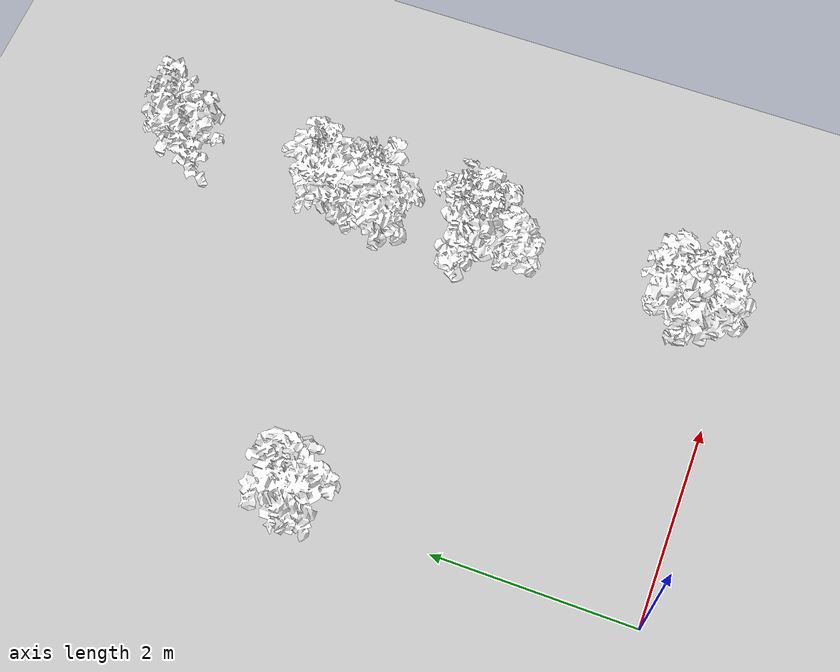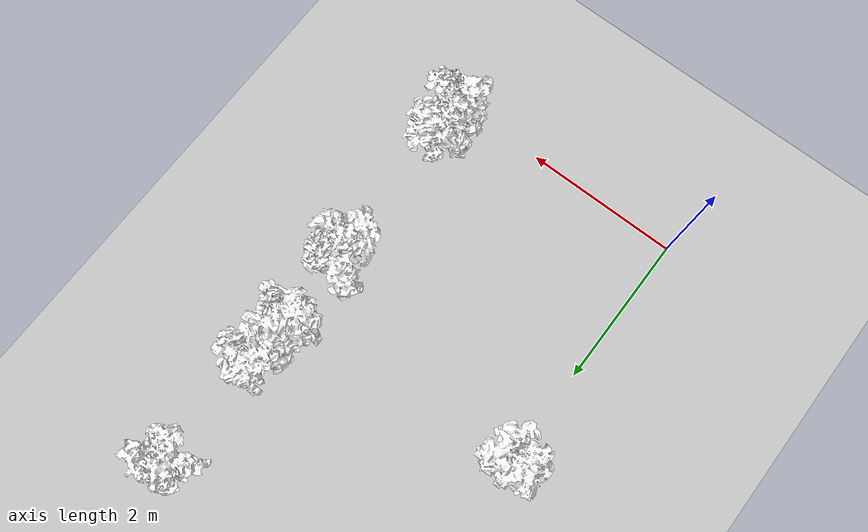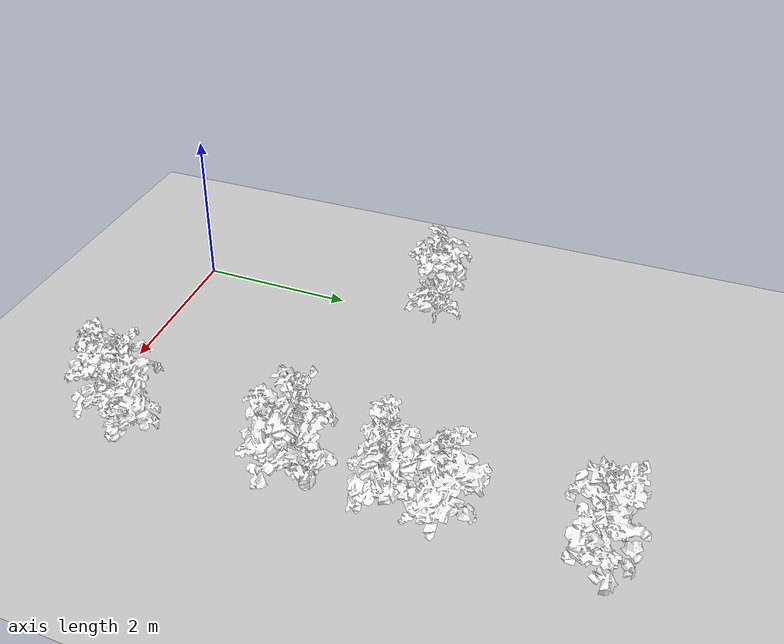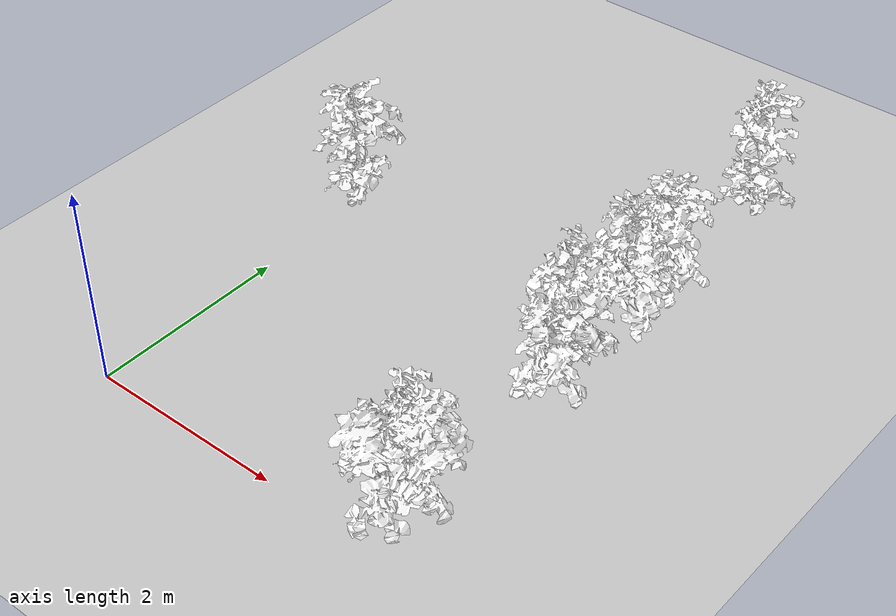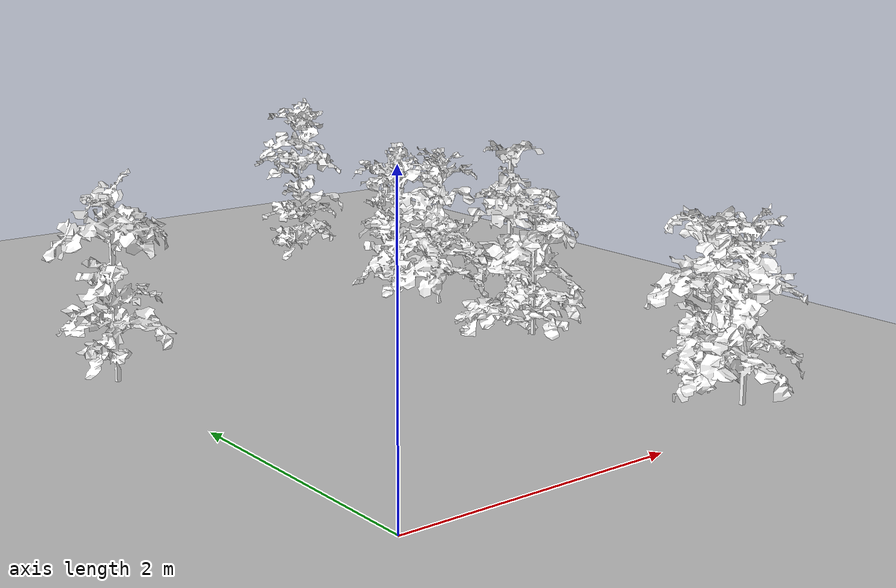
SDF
<sdf version="1.7">
 <world name="field">
  <physics name="1ms" type="ignored">
   <max_step_size>0.001</max_step_size>
   <real_time_factor>1</real_time_factor>
   <real_time_update_rate>1000</real_time_update_rate>
  </physics>
  <plugin name="ignition::gazebo::systems::Physics" filename="ignition-gazebo-physics-system"/>
  <plugin name="ignition::gazebo::systems::UserCommands" filename="ignition-gazebo-user-commands-system"/>
  <plugin name="ignition::gazebo::systems::SceneBroadcaster" filename="ignition-gazebo-scene-broadcaster-system"/>
  <plugin filename="ignition-gazebo-sensors-system" name="ignition::gazebo::systems::Sensors">
   <render_engine>ogre2</render_engine>
  </plugin>
  <scene><ambient>1 1 1 1</ambient><background>0.8 0.8 0.8 1</background><shadows>1</shadows></scene>
  <light name="sun" type="directional">
   <pose>0 0 10 0 -0 0</pose>
   <diffuse>0.8 0.8 0.8 1</diffuse>
   <specular>0.8 0.8 0.8 1</specular>
   <attenuation>
    <range>1000</range>
    <constant>0.9</constant>
    <linear>0.01</linear>
    <quadratic>0.001</quadratic>
   </attenuation>
   <direction>-0.5 0.1 -0.9</direction>
   <spot><inner_angle>0</inner_angle><outer_angle>0</outer_angle><falloff>0</falloff></spot>
  </light>
  <gravity>0 0 -9.8</gravity>
  <magnetic_field>6e-06 2.3e-05 -4.2e-05</magnetic_field>
  <atmosphere type="adiabatic"/>
  <include><uri>ground</uri><name>ground</name><pose>5.0 5.0 0 0 0 0</pose></include>
  <include><uri>tomato_11</uri><name>tomato_11</name><pose>0.0 3.3 0 0 0 0</pose></include>
  <include><uri>tomato_100</uri><name>tomato_100</name><pose>3.0999999999999996 0.3 0 0 0 0</pose></include>
  <include><uri>tomato_101</uri><name>tomato_101</name><pose>3.0999999999999996 0.6 0 0 0 0</pose></include>
  <include><uri>tomato_107</uri><name>tomato_107</name><pose>3.0999999999999996 2.4 0 0 0 0</pose></include>
  <include>
   <uri>tomato_108</uri>
   <name>tomato_108</name>
   <pose>3.0999999999999996 2.6999999999999997 0 0 0 0</pose>
  </include>
  <include>
   <uri>tomato_111</uri>
   <name>tomato_111</name>
   <pose>3.0999999999999996 3.5999999999999996 0 0 0 0</pose>
  </include>
  <include><uri>tomato_113</uri><name>tomato_113</name><pose>3.0999999999999996 4.2 0 0 0 0</pose></include>
  <include><uri>tomato_118</uri><name>tomato_118</name><pose>3.0999999999999996 5.7 0 0 0 0</pose></include>
 </world>
</sdf>

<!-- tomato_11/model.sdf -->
<sdf version="1.6">
  <model name="tomato_11">
    <static>true</static>
    <link name="link">
      <collision name="collision">
        <geometry>
          <box>
            <size>.1 .1 1</size>
          </box>
        </geometry>
      </collision>
      <visual name="branch">
        <geometry>
          <mesh>
            <uri>file://tomato_11/meshes/tomato.dae</uri>
            <submesh>
              <name>Branch1</name>
            </submesh>
          </mesh>
        </geometry>
        <material>
          <diffuse>1.0 1.0 1.0</diffuse>
          <pbr>
            <metal>
              <albedo_map>file://tomato_11/materials/textures/AG15brn1.png</albedo_map>
            </metal>
          </pbr>
        </material>
          <plugin filename="ignition-gazebo-label-system" name="ignition::gazebo::systems::Label">
            <label>2</label>
          </plugin>
      </visual>
      <visual name="leaf1">
        <geometry>
          <mesh>
            <uri>file://tomato_11/meshes/tomato.dae</uri>
            <submesh>
              <name>Leaf1</name>
            </submesh>
          </mesh>
        </geometry>
        <material>
          <diffuse>1.0 1.0 1.0</diffuse>
          <pbr>
            <metal>
              <albedo_map>file://tomato_11/materials/textures/AG15lef1.png</albedo_map>
            </metal>
          </pbr>
        </material>
          <plugin filename="ignition-gazebo-label-system" name="ignition::gazebo::systems::Label">
            <label>3</label>
          </plugin>
      </visual>
      <visual name="leaf2">
        <geometry>
          <mesh>
            <uri>file://tomato_11/meshes/tomato.dae</uri>
            <submesh>
              <name>Leaf2</name>
            </submesh>
          </mesh>
        </geometry>
        <material>
          <diffuse>1.0 1.0 1.0</diffuse>
          <pbr>
            <metal>
              <albedo_map>file://tomato_11/materials/textures/AG15lef2.png</albedo_map>
            </metal>
          </pbr>
        </material>
          <plugin filename="ignition-gazebo-label-system" name="ignition::gazebo::systems::Label">
            <label>3</label>
          </plugin>
      </visual>
      <visual name="fruit1">
        <geometry>
          <mesh>
            <uri>file://tomato_11/meshes/tomato.dae</uri>
            <submesh>
              <name>Fruit1</name>
            </submesh>
          </mesh>
        </geometry>
        <material>
          <diffuse>1.0 1.0 1.0</diffuse>
          <pbr>
            <metal>
              <albedo_map>file://tomato_11/materials/textures/AG15frt1.png</albedo_map>
            </metal>
          </pbr>
        </material>
          <plugin filename="ignition-gazebo-label-system" name="ignition::gazebo::systems::Label">
            <label>4</label>
          </plugin>
      </visual>
      <visual name="fruit2">
        <geometry>
          <mesh>
            <uri>file://tomato_11/meshes/tomato.dae</uri>
            <submesh>
              <name>Fruit2</name>
            </submesh>
          </mesh>
        </geometry>
        <material>
          <diffuse>1.0 1.0 1.0</diffuse>
          <pbr>
            <metal>
              <albedo_map>file://tomato_11/materials/textures/AG15frt2.png</albedo_map>
            </metal>
          </pbr>
        </material>
          <plugin filename="ignition-gazebo-label-system" name="ignition::gazebo::systems::Label">
            <label>4</label>
          </plugin>
      </visual>
      <visual name="fruit3">
        <geometry>
          <mesh>
            <uri>file://tomato_11/meshes/tomato.dae</uri>
            <submesh>
              <name>Fruit3</name>
            </submesh>
          </mesh>
        </geometry>
        <material>
          <diffuse>1.0 1.0 1.0</diffuse>
          <pbr>
            <metal>
              <albedo_map>file://tomato_11/materials/textures/AG15frt3.png</albedo_map>
            </metal>
          </pbr>
        </material>
      </visual>
          <plugin filename="ignition-gazebo-label-system" name="ignition::gazebo::systems::Label">
            <label>4</label>
          </plugin>
      <visual name="fruit4">
        <geometry>
          <mesh>
            <uri>file://tomato_11/meshes/tomato.dae</uri>
            <submesh>
              <name>Fruit4</name>
            </submesh>
          </mesh>
        </geometry>
        <material>
          <diffuse>1.0 1.0 1.0</diffuse>
          <pbr>
            <metal>
              <albedo_map>file://tomato_11/materials/textures/AG15frt4.png</albedo_map>
            </metal>
          </pbr>
        </material>
          <plugin filename="ignition-gazebo-label-system" name="ignition::gazebo::systems::Label">
            <label>4</label>
          </plugin>
      </visual>
      <visual name="blossom1">
        <geometry>
          <mesh>
            <uri>file://tomato_11/meshes/tomato.dae</uri>
            <submesh>
              <name>Blossom1</name>
            </submesh>
          </mesh>
        </geometry>
        <material>
          <diffuse>1.0 1.0 1.0</diffuse>
          <pbr>
            <metal>
              <albedo_map>file://tomato_11/materials/textures/AG15blo1.png</albedo_map>
            </metal>
          </pbr>
        </material>
          <plugin filename="ignition-gazebo-label-system" name="ignition::gazebo::systems::Label">
            <label>5</label>
          </plugin>
      </visual>
      <visual name="blossom2">
        <geometry>
          <mesh>
            <uri>file://tomato_11/meshes/tomato.dae</uri>
            <submesh>
              <name>Blossom2</name>
            </submesh>
          </mesh>
        </geometry>
        <material>
          <diffuse>1.0 1.0 1.0</diffuse>
          <pbr>
            <metal>
              <albedo_map>file://tomato_11/materials/textures/AG15blo2.png</albedo_map>
            </metal>
          </pbr>
        </material>
          <plugin filename="ignition-gazebo-label-system" name="ignition::gazebo::systems::Label">
            <label>5</label>
          </plugin>
      </visual>
      <visual name="blossom3">
        <geometry>
          <mesh>
            <uri>file://tomato_11/meshes/tomato.dae</uri>
            <submesh>
              <name>Blossom3</name>
            </submesh>
          </mesh>
        </geometry>
        <material>
          <diffuse>1.0 1.0 1.0</diffuse>
          <pbr>
            <metal>
              <albedo_map>file://tomato_11/materials/textures/AG15blo3.png</albedo_map>
            </metal>
          </pbr>
        </material>
          <plugin filename="ignition-gazebo-label-system" name="ignition::gazebo::systems::Label">
            <label>5</label>
          </plugin>
      </visual>
    </link>
  </model>
</sdf>

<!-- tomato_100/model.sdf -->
<sdf version="1.6">
  <model name="tomato_100">
    <static>true</static>
    <link name="link">
      <collision name="collision">
        <geometry>
          <box>
            <size>.1 .1 1</size>
          </box>
        </geometry>
      </collision>
      <visual name="branch">
        <geometry>
          <mesh>
            <uri>file://tomato_100/meshes/tomato.dae</uri>
            <submesh>
              <name>Branch1</name>
            </submesh>
          </mesh>
        </geometry>
        <material>
          <diffuse>1.0 1.0 1.0</diffuse>
          <pbr>
            <metal>
              <albedo_map>file://tomato_100/materials/textures/AG15brn1.png</albedo_map>
            </metal>
          </pbr>
        </material>
          <plugin filename="ignition-gazebo-label-system" name="ignition::gazebo::systems::Label">
            <label>2</label>
          </plugin>
      </visual>
      <visual name="leaf1">
        <geometry>
          <mesh>
            <uri>file://tomato_100/meshes/tomato.dae</uri>
            <submesh>
              <name>Leaf1</name>
            </submesh>
          </mesh>
        </geometry>
        <material>
          <diffuse>1.0 1.0 1.0</diffuse>
          <pbr>
            <metal>
              <albedo_map>file://tomato_100/materials/textures/AG15lef1.png</albedo_map>
            </metal>
          </pbr>
        </material>
          <plugin filename="ignition-gazebo-label-system" name="ignition::gazebo::systems::Label">
            <label>3</label>
          </plugin>
      </visual>
      <visual name="leaf2">
        <geometry>
          <mesh>
            <uri>file://tomato_100/meshes/tomato.dae</uri>
            <submesh>
              <name>Leaf2</name>
            </submesh>
          </mesh>
        </geometry>
        <material>
          <diffuse>1.0 1.0 1.0</diffuse>
          <pbr>
            <metal>
              <albedo_map>file://tomato_100/materials/textures/AG15lef2.png</albedo_map>
            </metal>
          </pbr>
        </material>
          <plugin filename="ignition-gazebo-label-system" name="ignition::gazebo::systems::Label">
            <label>3</label>
          </plugin>
      </visual>
      <visual name="fruit1">
        <geometry>
          <mesh>
            <uri>file://tomato_100/meshes/tomato.dae</uri>
            <submesh>
              <name>Fruit1</name>
            </submesh>
          </mesh>
        </geometry>
        <material>
          <diffuse>1.0 1.0 1.0</diffuse>
          <pbr>
            <metal>
              <albedo_map>file://tomato_100/materials/textures/AG15frt1.png</albedo_map>
            </metal>
          </pbr>
        </material>
          <plugin filename="ignition-gazebo-label-system" name="ignition::gazebo::systems::Label">
            <label>4</label>
          </plugin>
      </visual>
      <visual name="fruit2">
        <geometry>
          <mesh>
            <uri>file://tomato_100/meshes/tomato.dae</uri>
            <submesh>
              <name>Fruit2</name>
            </submesh>
          </mesh>
        </geometry>
        <material>
          <diffuse>1.0 1.0 1.0</diffuse>
          <pbr>
            <metal>
              <albedo_map>file://tomato_100/materials/textures/AG15frt2.png</albedo_map>
            </metal>
          </pbr>
        </material>
          <plugin filename="ignition-gazebo-label-system" name="ignition::gazebo::systems::Label">
            <label>4</label>
          </plugin>
      </visual>
      <visual name="fruit3">
        <geometry>
          <mesh>
            <uri>file://tomato_100/meshes/tomato.dae</uri>
            <submesh>
              <name>Fruit3</name>
            </submesh>
          </mesh>
        </geometry>
        <material>
          <diffuse>1.0 1.0 1.0</diffuse>
          <pbr>
            <metal>
              <albedo_map>file://tomato_100/materials/textures/AG15frt3.png</albedo_map>
            </metal>
          </pbr>
        </material>
      </visual>
          <plugin filename="ignition-gazebo-label-system" name="ignition::gazebo::systems::Label">
            <label>4</label>
          </plugin>
      <visual name="fruit4">
        <geometry>
          <mesh>
            <uri>file://tomato_100/meshes/tomato.dae</uri>
            <submesh>
              <name>Fruit4</name>
            </submesh>
          </mesh>
        </geometry>
        <material>
          <diffuse>1.0 1.0 1.0</diffuse>
          <pbr>
            <metal>
              <albedo_map>file://tomato_100/materials/textures/AG15frt4.png</albedo_map>
            </metal>
          </pbr>
        </material>
          <plugin filename="ignition-gazebo-label-system" name="ignition::gazebo::systems::Label">
            <label>4</label>
          </plugin>
      </visual>
      <visual name="blossom1">
        <geometry>
          <mesh>
            <uri>file://tomato_100/meshes/tomato.dae</uri>
            <submesh>
              <name>Blossom1</name>
            </submesh>
          </mesh>
        </geometry>
        <material>
          <diffuse>1.0 1.0 1.0</diffuse>
          <pbr>
            <metal>
              <albedo_map>file://tomato_100/materials/textures/AG15blo1.png</albedo_map>
            </metal>
          </pbr>
        </material>
          <plugin filename="ignition-gazebo-label-system" name="ignition::gazebo::systems::Label">
            <label>5</label>
          </plugin>
      </visual>
      <visual name="blossom2">
        <geometry>
          <mesh>
            <uri>file://tomato_100/meshes/tomato.dae</uri>
            <submesh>
              <name>Blossom2</name>
            </submesh>
          </mesh>
        </geometry>
        <material>
          <diffuse>1.0 1.0 1.0</diffuse>
          <pbr>
            <metal>
              <albedo_map>file://tomato_100/materials/textures/AG15blo2.png</albedo_map>
            </metal>
          </pbr>
        </material>
          <plugin filename="ignition-gazebo-label-system" name="ignition::gazebo::systems::Label">
            <label>5</label>
          </plugin>
      </visual>
      <visual name="blossom3">
        <geometry>
          <mesh>
            <uri>file://tomato_100/meshes/tomato.dae</uri>
            <submesh>
              <name>Blossom3</name>
            </submesh>
          </mesh>
        </geometry>
        <material>
          <diffuse>1.0 1.0 1.0</diffuse>
          <pbr>
            <metal>
              <albedo_map>file://tomato_100/materials/textures/AG15blo3.png</albedo_map>
            </metal>
          </pbr>
        </material>
          <plugin filename="ignition-gazebo-label-system" name="ignition::gazebo::systems::Label">
            <label>5</label>
          </plugin>
      </visual>
    </link>
  </model>
</sdf>

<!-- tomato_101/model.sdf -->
<sdf version="1.6">
  <model name="tomato_101">
    <static>true</static>
    <link name="link">
      <collision name="collision">
        <geometry>
          <box>
            <size>.1 .1 1</size>
          </box>
        </geometry>
      </collision>
      <visual name="branch">
        <geometry>
          <mesh>
            <uri>file://tomato_101/meshes/tomato.dae</uri>
            <submesh>
              <name>Branch1</name>
            </submesh>
          </mesh>
        </geometry>
        <material>
          <diffuse>1.0 1.0 1.0</diffuse>
          <pbr>
            <metal>
              <albedo_map>file://tomato_101/materials/textures/AG15brn1.png</albedo_map>
            </metal>
          </pbr>
        </material>
          <plugin filename="ignition-gazebo-label-system" name="ignition::gazebo::systems::Label">
            <label>2</label>
          </plugin>
      </visual>
      <visual name="leaf1">
        <geometry>
          <mesh>
            <uri>file://tomato_101/meshes/tomato.dae</uri>
            <submesh>
              <name>Leaf1</name>
            </submesh>
          </mesh>
        </geometry>
        <material>
          <diffuse>1.0 1.0 1.0</diffuse>
          <pbr>
            <metal>
              <albedo_map>file://tomato_101/materials/textures/AG15lef1.png</albedo_map>
            </metal>
          </pbr>
        </material>
          <plugin filename="ignition-gazebo-label-system" name="ignition::gazebo::systems::Label">
            <label>3</label>
          </plugin>
      </visual>
      <visual name="leaf2">
        <geometry>
          <mesh>
            <uri>file://tomato_101/meshes/tomato.dae</uri>
            <submesh>
              <name>Leaf2</name>
            </submesh>
          </mesh>
        </geometry>
        <material>
          <diffuse>1.0 1.0 1.0</diffuse>
          <pbr>
            <metal>
              <albedo_map>file://tomato_101/materials/textures/AG15lef2.png</albedo_map>
            </metal>
          </pbr>
        </material>
          <plugin filename="ignition-gazebo-label-system" name="ignition::gazebo::systems::Label">
            <label>3</label>
          </plugin>
      </visual>
      <visual name="fruit1">
        <geometry>
          <mesh>
            <uri>file://tomato_101/meshes/tomato.dae</uri>
            <submesh>
              <name>Fruit1</name>
            </submesh>
          </mesh>
        </geometry>
        <material>
          <diffuse>1.0 1.0 1.0</diffuse>
          <pbr>
            <metal>
              <albedo_map>file://tomato_101/materials/textures/AG15frt1.png</albedo_map>
            </metal>
          </pbr>
        </material>
          <plugin filename="ignition-gazebo-label-system" name="ignition::gazebo::systems::Label">
            <label>4</label>
          </plugin>
      </visual>
      <visual name="fruit2">
        <geometry>
          <mesh>
            <uri>file://tomato_101/meshes/tomato.dae</uri>
            <submesh>
              <name>Fruit2</name>
            </submesh>
          </mesh>
        </geometry>
        <material>
          <diffuse>1.0 1.0 1.0</diffuse>
          <pbr>
            <metal>
              <albedo_map>file://tomato_101/materials/textures/AG15frt2.png</albedo_map>
            </metal>
          </pbr>
        </material>
          <plugin filename="ignition-gazebo-label-system" name="ignition::gazebo::systems::Label">
            <label>4</label>
          </plugin>
      </visual>
      <visual name="fruit3">
        <geometry>
          <mesh>
            <uri>file://tomato_101/meshes/tomato.dae</uri>
            <submesh>
              <name>Fruit3</name>
            </submesh>
          </mesh>
        </geometry>
        <material>
          <diffuse>1.0 1.0 1.0</diffuse>
          <pbr>
            <metal>
              <albedo_map>file://tomato_101/materials/textures/AG15frt3.png</albedo_map>
            </metal>
          </pbr>
        </material>
      </visual>
          <plugin filename="ignition-gazebo-label-system" name="ignition::gazebo::systems::Label">
            <label>4</label>
          </plugin>
      <visual name="fruit4">
        <geometry>
          <mesh>
            <uri>file://tomato_101/meshes/tomato.dae</uri>
            <submesh>
              <name>Fruit4</name>
            </submesh>
          </mesh>
        </geometry>
        <material>
          <diffuse>1.0 1.0 1.0</diffuse>
          <pbr>
            <metal>
              <albedo_map>file://tomato_101/materials/textures/AG15frt4.png</albedo_map>
            </metal>
          </pbr>
        </material>
          <plugin filename="ignition-gazebo-label-system" name="ignition::gazebo::systems::Label">
            <label>4</label>
          </plugin>
      </visual>
      <visual name="blossom1">
        <geometry>
          <mesh>
            <uri>file://tomato_101/meshes/tomato.dae</uri>
            <submesh>
              <name>Blossom1</name>
            </submesh>
          </mesh>
        </geometry>
        <material>
          <diffuse>1.0 1.0 1.0</diffuse>
          <pbr>
            <metal>
              <albedo_map>file://tomato_101/materials/textures/AG15blo1.png</albedo_map>
            </metal>
          </pbr>
        </material>
          <plugin filename="ignition-gazebo-label-system" name="ignition::gazebo::systems::Label">
            <label>5</label>
          </plugin>
      </visual>
      <visual name="blossom2">
        <geometry>
          <mesh>
            <uri>file://tomato_101/meshes/tomato.dae</uri>
            <submesh>
              <name>Blossom2</name>
            </submesh>
          </mesh>
        </geometry>
        <material>
          <diffuse>1.0 1.0 1.0</diffuse>
          <pbr>
            <metal>
              <albedo_map>file://tomato_101/materials/textures/AG15blo2.png</albedo_map>
            </metal>
          </pbr>
        </material>
          <plugin filename="ignition-gazebo-label-system" name="ignition::gazebo::systems::Label">
            <label>5</label>
          </plugin>
      </visual>
      <visual name="blossom3">
        <geometry>
          <mesh>
            <uri>file://tomato_101/meshes/tomato.dae</uri>
            <submesh>
              <name>Blossom3</name>
            </submesh>
          </mesh>
        </geometry>
        <material>
          <diffuse>1.0 1.0 1.0</diffuse>
          <pbr>
            <metal>
              <albedo_map>file://tomato_101/materials/textures/AG15blo3.png</albedo_map>
            </metal>
          </pbr>
        </material>
          <plugin filename="ignition-gazebo-label-system" name="ignition::gazebo::systems::Label">
            <label>5</label>
          </plugin>
      </visual>
    </link>
  </model>
</sdf>

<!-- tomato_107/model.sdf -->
<sdf version="1.6">
  <model name="tomato_107">
    <static>true</static>
    <link name="link">
      <collision name="collision">
        <geometry>
          <box>
            <size>.1 .1 1</size>
          </box>
        </geometry>
      </collision>
      <visual name="branch">
        <geometry>
          <mesh>
            <uri>file://tomato_107/meshes/tomato.dae</uri>
            <submesh>
              <name>Branch1</name>
            </submesh>
          </mesh>
        </geometry>
        <material>
          <diffuse>1.0 1.0 1.0</diffuse>
          <pbr>
            <metal>
              <albedo_map>file://tomato_107/materials/textures/AG15brn1.png</albedo_map>
            </metal>
          </pbr>
        </material>
          <plugin filename="ignition-gazebo-label-system" name="ignition::gazebo::systems::Label">
            <label>2</label>
          </plugin>
      </visual>
      <visual name="leaf1">
        <geometry>
          <mesh>
            <uri>file://tomato_107/meshes/tomato.dae</uri>
            <submesh>
              <name>Leaf1</name>
            </submesh>
          </mesh>
        </geometry>
        <material>
          <diffuse>1.0 1.0 1.0</diffuse>
          <pbr>
            <metal>
              <albedo_map>file://tomato_107/materials/textures/AG15lef1.png</albedo_map>
            </metal>
          </pbr>
        </material>
          <plugin filename="ignition-gazebo-label-system" name="ignition::gazebo::systems::Label">
            <label>3</label>
          </plugin>
      </visual>
      <visual name="leaf2">
        <geometry>
          <mesh>
            <uri>file://tomato_107/meshes/tomato.dae</uri>
            <submesh>
              <name>Leaf2</name>
            </submesh>
          </mesh>
        </geometry>
        <material>
          <diffuse>1.0 1.0 1.0</diffuse>
          <pbr>
            <metal>
              <albedo_map>file://tomato_107/materials/textures/AG15lef2.png</albedo_map>
            </metal>
          </pbr>
        </material>
          <plugin filename="ignition-gazebo-label-system" name="ignition::gazebo::systems::Label">
            <label>3</label>
          </plugin>
      </visual>
      <visual name="fruit1">
        <geometry>
          <mesh>
            <uri>file://tomato_107/meshes/tomato.dae</uri>
            <submesh>
              <name>Fruit1</name>
            </submesh>
          </mesh>
        </geometry>
        <material>
          <diffuse>1.0 1.0 1.0</diffuse>
          <pbr>
            <metal>
              <albedo_map>file://tomato_107/materials/textures/AG15frt1.png</albedo_map>
            </metal>
          </pbr>
        </material>
          <plugin filename="ignition-gazebo-label-system" name="ignition::gazebo::systems::Label">
            <label>4</label>
          </plugin>
      </visual>
      <visual name="fruit2">
        <geometry>
          <mesh>
            <uri>file://tomato_107/meshes/tomato.dae</uri>
            <submesh>
              <name>Fruit2</name>
            </submesh>
          </mesh>
        </geometry>
        <material>
          <diffuse>1.0 1.0 1.0</diffuse>
          <pbr>
            <metal>
              <albedo_map>file://tomato_107/materials/textures/AG15frt2.png</albedo_map>
            </metal>
          </pbr>
        </material>
          <plugin filename="ignition-gazebo-label-system" name="ignition::gazebo::systems::Label">
            <label>4</label>
          </plugin>
      </visual>
      <visual name="fruit3">
        <geometry>
          <mesh>
            <uri>file://tomato_107/meshes/tomato.dae</uri>
            <submesh>
              <name>Fruit3</name>
            </submesh>
          </mesh>
        </geometry>
        <material>
          <diffuse>1.0 1.0 1.0</diffuse>
          <pbr>
            <metal>
              <albedo_map>file://tomato_107/materials/textures/AG15frt3.png</albedo_map>
            </metal>
          </pbr>
        </material>
      </visual>
          <plugin filename="ignition-gazebo-label-system" name="ignition::gazebo::systems::Label">
            <label>4</label>
          </plugin>
      <visual name="fruit4">
        <geometry>
          <mesh>
            <uri>file://tomato_107/meshes/tomato.dae</uri>
            <submesh>
              <name>Fruit4</name>
            </submesh>
          </mesh>
        </geometry>
        <material>
          <diffuse>1.0 1.0 1.0</diffuse>
          <pbr>
            <metal>
              <albedo_map>file://tomato_107/materials/textures/AG15frt4.png</albedo_map>
            </metal>
          </pbr>
        </material>
          <plugin filename="ignition-gazebo-label-system" name="ignition::gazebo::systems::Label">
            <label>4</label>
          </plugin>
      </visual>
      <visual name="blossom1">
        <geometry>
          <mesh>
            <uri>file://tomato_107/meshes/tomato.dae</uri>
            <submesh>
              <name>Blossom1</name>
            </submesh>
          </mesh>
        </geometry>
        <material>
          <diffuse>1.0 1.0 1.0</diffuse>
          <pbr>
            <metal>
              <albedo_map>file://tomato_107/materials/textures/AG15blo1.png</albedo_map>
            </metal>
          </pbr>
        </material>
          <plugin filename="ignition-gazebo-label-system" name="ignition::gazebo::systems::Label">
            <label>5</label>
          </plugin>
      </visual>
      <visual name="blossom2">
        <geometry>
          <mesh>
            <uri>file://tomato_107/meshes/tomato.dae</uri>
            <submesh>
              <name>Blossom2</name>
            </submesh>
          </mesh>
        </geometry>
        <material>
          <diffuse>1.0 1.0 1.0</diffuse>
          <pbr>
            <metal>
              <albedo_map>file://tomato_107/materials/textures/AG15blo2.png</albedo_map>
            </metal>
          </pbr>
        </material>
          <plugin filename="ignition-gazebo-label-system" name="ignition::gazebo::systems::Label">
            <label>5</label>
          </plugin>
      </visual>
      <visual name="blossom3">
        <geometry>
          <mesh>
            <uri>file://tomato_107/meshes/tomato.dae</uri>
            <submesh>
              <name>Blossom3</name>
            </submesh>
          </mesh>
        </geometry>
        <material>
          <diffuse>1.0 1.0 1.0</diffuse>
          <pbr>
            <metal>
              <albedo_map>file://tomato_107/materials/textures/AG15blo3.png</albedo_map>
            </metal>
          </pbr>
        </material>
          <plugin filename="ignition-gazebo-label-system" name="ignition::gazebo::systems::Label">
            <label>5</label>
          </plugin>
      </visual>
    </link>
  </model>
</sdf>

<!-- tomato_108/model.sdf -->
<sdf version="1.6">
  <model name="tomato_108">
    <static>true</static>
    <link name="link">
      <collision name="collision">
        <geometry>
          <box>
            <size>.1 .1 1</size>
          </box>
        </geometry>
      </collision>
      <visual name="branch">
        <geometry>
          <mesh>
            <uri>file://tomato_108/meshes/tomato.dae</uri>
            <submesh>
              <name>Branch1</name>
            </submesh>
          </mesh>
        </geometry>
        <material>
          <diffuse>1.0 1.0 1.0</diffuse>
          <pbr>
            <metal>
              <albedo_map>file://tomato_108/materials/textures/AG15brn1.png</albedo_map>
            </metal>
          </pbr>
        </material>
          <plugin filename="ignition-gazebo-label-system" name="ignition::gazebo::systems::Label">
            <label>2</label>
          </plugin>
      </visual>
      <visual name="leaf1">
        <geometry>
          <mesh>
            <uri>file://tomato_108/meshes/tomato.dae</uri>
            <submesh>
              <name>Leaf1</name>
            </submesh>
          </mesh>
        </geometry>
        <material>
          <diffuse>1.0 1.0 1.0</diffuse>
          <pbr>
            <metal>
              <albedo_map>file://tomato_108/materials/textures/AG15lef1.png</albedo_map>
            </metal>
          </pbr>
        </material>
          <plugin filename="ignition-gazebo-label-system" name="ignition::gazebo::systems::Label">
            <label>3</label>
          </plugin>
      </visual>
      <visual name="leaf2">
        <geometry>
          <mesh>
            <uri>file://tomato_108/meshes/tomato.dae</uri>
            <submesh>
              <name>Leaf2</name>
            </submesh>
          </mesh>
        </geometry>
        <material>
          <diffuse>1.0 1.0 1.0</diffuse>
          <pbr>
            <metal>
              <albedo_map>file://tomato_108/materials/textures/AG15lef2.png</albedo_map>
            </metal>
          </pbr>
        </material>
          <plugin filename="ignition-gazebo-label-system" name="ignition::gazebo::systems::Label">
            <label>3</label>
          </plugin>
      </visual>
      <visual name="fruit1">
        <geometry>
          <mesh>
            <uri>file://tomato_108/meshes/tomato.dae</uri>
            <submesh>
              <name>Fruit1</name>
            </submesh>
          </mesh>
        </geometry>
        <material>
          <diffuse>1.0 1.0 1.0</diffuse>
          <pbr>
            <metal>
              <albedo_map>file://tomato_108/materials/textures/AG15frt1.png</albedo_map>
            </metal>
          </pbr>
        </material>
          <plugin filename="ignition-gazebo-label-system" name="ignition::gazebo::systems::Label">
            <label>4</label>
          </plugin>
      </visual>
      <visual name="fruit2">
        <geometry>
          <mesh>
            <uri>file://tomato_108/meshes/tomato.dae</uri>
            <submesh>
              <name>Fruit2</name>
            </submesh>
          </mesh>
        </geometry>
        <material>
          <diffuse>1.0 1.0 1.0</diffuse>
          <pbr>
            <metal>
              <albedo_map>file://tomato_108/materials/textures/AG15frt2.png</albedo_map>
            </metal>
          </pbr>
        </material>
          <plugin filename="ignition-gazebo-label-system" name="ignition::gazebo::systems::Label">
            <label>4</label>
          </plugin>
      </visual>
      <visual name="fruit3">
        <geometry>
          <mesh>
            <uri>file://tomato_108/meshes/tomato.dae</uri>
            <submesh>
              <name>Fruit3</name>
            </submesh>
          </mesh>
        </geometry>
        <material>
          <diffuse>1.0 1.0 1.0</diffuse>
          <pbr>
            <metal>
              <albedo_map>file://tomato_108/materials/textures/AG15frt3.png</albedo_map>
            </metal>
          </pbr>
        </material>
      </visual>
          <plugin filename="ignition-gazebo-label-system" name="ignition::gazebo::systems::Label">
            <label>4</label>
          </plugin>
      <visual name="fruit4">
        <geometry>
          <mesh>
            <uri>file://tomato_108/meshes/tomato.dae</uri>
            <submesh>
              <name>Fruit4</name>
            </submesh>
          </mesh>
        </geometry>
        <material>
          <diffuse>1.0 1.0 1.0</diffuse>
          <pbr>
            <metal>
              <albedo_map>file://tomato_108/materials/textures/AG15frt4.png</albedo_map>
            </metal>
          </pbr>
        </material>
          <plugin filename="ignition-gazebo-label-system" name="ignition::gazebo::systems::Label">
            <label>4</label>
          </plugin>
      </visual>
      <visual name="blossom1">
        <geometry>
          <mesh>
            <uri>file://tomato_108/meshes/tomato.dae</uri>
            <submesh>
              <name>Blossom1</name>
            </submesh>
          </mesh>
        </geometry>
        <material>
          <diffuse>1.0 1.0 1.0</diffuse>
          <pbr>
            <metal>
              <albedo_map>file://tomato_108/materials/textures/AG15blo1.png</albedo_map>
            </metal>
          </pbr>
        </material>
          <plugin filename="ignition-gazebo-label-system" name="ignition::gazebo::systems::Label">
            <label>5</label>
          </plugin>
      </visual>
      <visual name="blossom2">
        <geometry>
          <mesh>
            <uri>file://tomato_108/meshes/tomato.dae</uri>
            <submesh>
              <name>Blossom2</name>
            </submesh>
          </mesh>
        </geometry>
        <material>
          <diffuse>1.0 1.0 1.0</diffuse>
          <pbr>
            <metal>
              <albedo_map>file://tomato_108/materials/textures/AG15blo2.png</albedo_map>
            </metal>
          </pbr>
        </material>
          <plugin filename="ignition-gazebo-label-system" name="ignition::gazebo::systems::Label">
            <label>5</label>
          </plugin>
      </visual>
      <visual name="blossom3">
        <geometry>
          <mesh>
            <uri>file://tomato_108/meshes/tomato.dae</uri>
            <submesh>
              <name>Blossom3</name>
            </submesh>
          </mesh>
        </geometry>
        <material>
          <diffuse>1.0 1.0 1.0</diffuse>
          <pbr>
            <metal>
              <albedo_map>file://tomato_108/materials/textures/AG15blo3.png</albedo_map>
            </metal>
          </pbr>
        </material>
          <plugin filename="ignition-gazebo-label-system" name="ignition::gazebo::systems::Label">
            <label>5</label>
          </plugin>
      </visual>
    </link>
  </model>
</sdf>

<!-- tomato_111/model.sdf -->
<sdf version="1.6">
  <model name="tomato_111">
    <static>true</static>
    <link name="link">
      <collision name="collision">
        <geometry>
          <box>
            <size>.1 .1 1</size>
          </box>
        </geometry>
      </collision>
      <visual name="branch">
        <geometry>
          <mesh>
            <uri>file://tomato_111/meshes/tomato.dae</uri>
            <submesh>
              <name>Branch1</name>
            </submesh>
          </mesh>
        </geometry>
        <material>
          <diffuse>1.0 1.0 1.0</diffuse>
          <pbr>
            <metal>
              <albedo_map>file://tomato_111/materials/textures/AG15brn1.png</albedo_map>
            </metal>
          </pbr>
        </material>
          <plugin filename="ignition-gazebo-label-system" name="ignition::gazebo::systems::Label">
            <label>2</label>
          </plugin>
      </visual>
      <visual name="leaf1">
        <geometry>
          <mesh>
            <uri>file://tomato_111/meshes/tomato.dae</uri>
            <submesh>
              <name>Leaf1</name>
            </submesh>
          </mesh>
        </geometry>
        <material>
          <diffuse>1.0 1.0 1.0</diffuse>
          <pbr>
            <metal>
              <albedo_map>file://tomato_111/materials/textures/AG15lef1.png</albedo_map>
            </metal>
          </pbr>
        </material>
          <plugin filename="ignition-gazebo-label-system" name="ignition::gazebo::systems::Label">
            <label>3</label>
          </plugin>
      </visual>
      <visual name="leaf2">
        <geometry>
          <mesh>
            <uri>file://tomato_111/meshes/tomato.dae</uri>
            <submesh>
              <name>Leaf2</name>
            </submesh>
          </mesh>
        </geometry>
        <material>
          <diffuse>1.0 1.0 1.0</diffuse>
          <pbr>
            <metal>
              <albedo_map>file://tomato_111/materials/textures/AG15lef2.png</albedo_map>
            </metal>
          </pbr>
        </material>
          <plugin filename="ignition-gazebo-label-system" name="ignition::gazebo::systems::Label">
            <label>3</label>
          </plugin>
      </visual>
      <visual name="fruit1">
        <geometry>
          <mesh>
            <uri>file://tomato_111/meshes/tomato.dae</uri>
            <submesh>
              <name>Fruit1</name>
            </submesh>
          </mesh>
        </geometry>
        <material>
          <diffuse>1.0 1.0 1.0</diffuse>
          <pbr>
            <metal>
              <albedo_map>file://tomato_111/materials/textures/AG15frt1.png</albedo_map>
            </metal>
          </pbr>
        </material>
          <plugin filename="ignition-gazebo-label-system" name="ignition::gazebo::systems::Label">
            <label>4</label>
          </plugin>
      </visual>
      <visual name="fruit2">
        <geometry>
          <mesh>
            <uri>file://tomato_111/meshes/tomato.dae</uri>
            <submesh>
              <name>Fruit2</name>
            </submesh>
          </mesh>
        </geometry>
        <material>
          <diffuse>1.0 1.0 1.0</diffuse>
          <pbr>
            <metal>
              <albedo_map>file://tomato_111/materials/textures/AG15frt2.png</albedo_map>
            </metal>
          </pbr>
        </material>
          <plugin filename="ignition-gazebo-label-system" name="ignition::gazebo::systems::Label">
            <label>4</label>
          </plugin>
      </visual>
      <visual name="fruit3">
        <geometry>
          <mesh>
            <uri>file://tomato_111/meshes/tomato.dae</uri>
            <submesh>
              <name>Fruit3</name>
            </submesh>
          </mesh>
        </geometry>
        <material>
          <diffuse>1.0 1.0 1.0</diffuse>
          <pbr>
            <metal>
              <albedo_map>file://tomato_111/materials/textures/AG15frt3.png</albedo_map>
            </metal>
          </pbr>
        </material>
      </visual>
          <plugin filename="ignition-gazebo-label-system" name="ignition::gazebo::systems::Label">
            <label>4</label>
          </plugin>
      <visual name="fruit4">
        <geometry>
          <mesh>
            <uri>file://tomato_111/meshes/tomato.dae</uri>
            <submesh>
              <name>Fruit4</name>
            </submesh>
          </mesh>
        </geometry>
        <material>
          <diffuse>1.0 1.0 1.0</diffuse>
          <pbr>
            <metal>
              <albedo_map>file://tomato_111/materials/textures/AG15frt4.png</albedo_map>
            </metal>
          </pbr>
        </material>
          <plugin filename="ignition-gazebo-label-system" name="ignition::gazebo::systems::Label">
            <label>4</label>
          </plugin>
      </visual>
      <visual name="blossom1">
        <geometry>
          <mesh>
            <uri>file://tomato_111/meshes/tomato.dae</uri>
            <submesh>
              <name>Blossom1</name>
            </submesh>
          </mesh>
        </geometry>
        <material>
          <diffuse>1.0 1.0 1.0</diffuse>
          <pbr>
            <metal>
              <albedo_map>file://tomato_111/materials/textures/AG15blo1.png</albedo_map>
            </metal>
          </pbr>
        </material>
          <plugin filename="ignition-gazebo-label-system" name="ignition::gazebo::systems::Label">
            <label>5</label>
          </plugin>
      </visual>
      <visual name="blossom2">
        <geometry>
          <mesh>
            <uri>file://tomato_111/meshes/tomato.dae</uri>
            <submesh>
              <name>Blossom2</name>
            </submesh>
          </mesh>
        </geometry>
        <material>
          <diffuse>1.0 1.0 1.0</diffuse>
          <pbr>
            <metal>
              <albedo_map>file://tomato_111/materials/textures/AG15blo2.png</albedo_map>
            </metal>
          </pbr>
        </material>
          <plugin filename="ignition-gazebo-label-system" name="ignition::gazebo::systems::Label">
            <label>5</label>
          </plugin>
      </visual>
      <visual name="blossom3">
        <geometry>
          <mesh>
            <uri>file://tomato_111/meshes/tomato.dae</uri>
            <submesh>
              <name>Blossom3</name>
            </submesh>
          </mesh>
        </geometry>
        <material>
          <diffuse>1.0 1.0 1.0</diffuse>
          <pbr>
            <metal>
              <albedo_map>file://tomato_111/materials/textures/AG15blo3.png</albedo_map>
            </metal>
          </pbr>
        </material>
          <plugin filename="ignition-gazebo-label-system" name="ignition::gazebo::systems::Label">
            <label>5</label>
          </plugin>
      </visual>
    </link>
  </model>
</sdf>

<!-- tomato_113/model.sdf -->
<sdf version="1.6">
  <model name="tomato_113">
    <static>true</static>
    <link name="link">
      <collision name="collision">
        <geometry>
          <box>
            <size>.1 .1 1</size>
          </box>
        </geometry>
      </collision>
      <visual name="branch">
        <geometry>
          <mesh>
            <uri>file://tomato_113/meshes/tomato.dae</uri>
            <submesh>
              <name>Branch1</name>
            </submesh>
          </mesh>
        </geometry>
        <material>
          <diffuse>1.0 1.0 1.0</diffuse>
          <pbr>
            <metal>
              <albedo_map>file://tomato_113/materials/textures/AG15brn1.png</albedo_map>
            </metal>
          </pbr>
        </material>
          <plugin filename="ignition-gazebo-label-system" name="ignition::gazebo::systems::Label">
            <label>2</label>
          </plugin>
      </visual>
      <visual name="leaf1">
        <geometry>
          <mesh>
            <uri>file://tomato_113/meshes/tomato.dae</uri>
            <submesh>
              <name>Leaf1</name>
            </submesh>
          </mesh>
        </geometry>
        <material>
          <diffuse>1.0 1.0 1.0</diffuse>
          <pbr>
            <metal>
              <albedo_map>file://tomato_113/materials/textures/AG15lef1.png</albedo_map>
            </metal>
          </pbr>
        </material>
          <plugin filename="ignition-gazebo-label-system" name="ignition::gazebo::systems::Label">
            <label>3</label>
          </plugin>
      </visual>
      <visual name="leaf2">
        <geometry>
          <mesh>
            <uri>file://tomato_113/meshes/tomato.dae</uri>
            <submesh>
              <name>Leaf2</name>
            </submesh>
          </mesh>
        </geometry>
        <material>
          <diffuse>1.0 1.0 1.0</diffuse>
          <pbr>
            <metal>
              <albedo_map>file://tomato_113/materials/textures/AG15lef2.png</albedo_map>
            </metal>
          </pbr>
        </material>
          <plugin filename="ignition-gazebo-label-system" name="ignition::gazebo::systems::Label">
            <label>3</label>
          </plugin>
      </visual>
      <visual name="fruit1">
        <geometry>
          <mesh>
            <uri>file://tomato_113/meshes/tomato.dae</uri>
            <submesh>
              <name>Fruit1</name>
            </submesh>
          </mesh>
        </geometry>
        <material>
          <diffuse>1.0 1.0 1.0</diffuse>
          <pbr>
            <metal>
              <albedo_map>file://tomato_113/materials/textures/AG15frt1.png</albedo_map>
            </metal>
          </pbr>
        </material>
          <plugin filename="ignition-gazebo-label-system" name="ignition::gazebo::systems::Label">
            <label>4</label>
          </plugin>
      </visual>
      <visual name="fruit2">
        <geometry>
          <mesh>
            <uri>file://tomato_113/meshes/tomato.dae</uri>
            <submesh>
              <name>Fruit2</name>
            </submesh>
          </mesh>
        </geometry>
        <material>
          <diffuse>1.0 1.0 1.0</diffuse>
          <pbr>
            <metal>
              <albedo_map>file://tomato_113/materials/textures/AG15frt2.png</albedo_map>
            </metal>
          </pbr>
        </material>
          <plugin filename="ignition-gazebo-label-system" name="ignition::gazebo::systems::Label">
            <label>4</label>
          </plugin>
      </visual>
      <visual name="fruit3">
        <geometry>
          <mesh>
            <uri>file://tomato_113/meshes/tomato.dae</uri>
            <submesh>
              <name>Fruit3</name>
            </submesh>
          </mesh>
        </geometry>
        <material>
          <diffuse>1.0 1.0 1.0</diffuse>
          <pbr>
            <metal>
              <albedo_map>file://tomato_113/materials/textures/AG15frt3.png</albedo_map>
            </metal>
          </pbr>
        </material>
      </visual>
          <plugin filename="ignition-gazebo-label-system" name="ignition::gazebo::systems::Label">
            <label>4</label>
          </plugin>
      <visual name="fruit4">
        <geometry>
          <mesh>
            <uri>file://tomato_113/meshes/tomato.dae</uri>
            <submesh>
              <name>Fruit4</name>
            </submesh>
          </mesh>
        </geometry>
        <material>
          <diffuse>1.0 1.0 1.0</diffuse>
          <pbr>
            <metal>
              <albedo_map>file://tomato_113/materials/textures/AG15frt4.png</albedo_map>
            </metal>
          </pbr>
        </material>
          <plugin filename="ignition-gazebo-label-system" name="ignition::gazebo::systems::Label">
            <label>4</label>
          </plugin>
      </visual>
      <visual name="blossom1">
        <geometry>
          <mesh>
            <uri>file://tomato_113/meshes/tomato.dae</uri>
            <submesh>
              <name>Blossom1</name>
            </submesh>
          </mesh>
        </geometry>
        <material>
          <diffuse>1.0 1.0 1.0</diffuse>
          <pbr>
            <metal>
              <albedo_map>file://tomato_113/materials/textures/AG15blo1.png</albedo_map>
            </metal>
          </pbr>
        </material>
          <plugin filename="ignition-gazebo-label-system" name="ignition::gazebo::systems::Label">
            <label>5</label>
          </plugin>
      </visual>
      <visual name="blossom2">
        <geometry>
          <mesh>
            <uri>file://tomato_113/meshes/tomato.dae</uri>
            <submesh>
              <name>Blossom2</name>
            </submesh>
          </mesh>
        </geometry>
        <material>
          <diffuse>1.0 1.0 1.0</diffuse>
          <pbr>
            <metal>
              <albedo_map>file://tomato_113/materials/textures/AG15blo2.png</albedo_map>
            </metal>
          </pbr>
        </material>
          <plugin filename="ignition-gazebo-label-system" name="ignition::gazebo::systems::Label">
            <label>5</label>
          </plugin>
      </visual>
      <visual name="blossom3">
        <geometry>
          <mesh>
            <uri>file://tomato_113/meshes/tomato.dae</uri>
            <submesh>
              <name>Blossom3</name>
            </submesh>
          </mesh>
        </geometry>
        <material>
          <diffuse>1.0 1.0 1.0</diffuse>
          <pbr>
            <metal>
              <albedo_map>file://tomato_113/materials/textures/AG15blo3.png</albedo_map>
            </metal>
          </pbr>
        </material>
          <plugin filename="ignition-gazebo-label-system" name="ignition::gazebo::systems::Label">
            <label>5</label>
          </plugin>
      </visual>
    </link>
  </model>
</sdf>

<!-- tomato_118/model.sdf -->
<sdf version="1.6">
  <model name="tomato_118">
    <static>true</static>
    <link name="link">
      <collision name="collision">
        <geometry>
          <box>
            <size>.1 .1 1</size>
          </box>
        </geometry>
      </collision>
      <visual name="branch">
        <geometry>
          <mesh>
            <uri>file://tomato_118/meshes/tomato.dae</uri>
            <submesh>
              <name>Branch1</name>
            </submesh>
          </mesh>
        </geometry>
        <material>
          <diffuse>1.0 1.0 1.0</diffuse>
          <pbr>
            <metal>
              <albedo_map>file://tomato_118/materials/textures/AG15brn1.png</albedo_map>
            </metal>
          </pbr>
        </material>
          <plugin filename="ignition-gazebo-label-system" name="ignition::gazebo::systems::Label">
            <label>2</label>
          </plugin>
      </visual>
      <visual name="leaf1">
        <geometry>
          <mesh>
            <uri>file://tomato_118/meshes/tomato.dae</uri>
            <submesh>
              <name>Leaf1</name>
            </submesh>
          </mesh>
        </geometry>
        <material>
          <diffuse>1.0 1.0 1.0</diffuse>
          <pbr>
            <metal>
              <albedo_map>file://tomato_118/materials/textures/AG15lef1.png</albedo_map>
            </metal>
          </pbr>
        </material>
          <plugin filename="ignition-gazebo-label-system" name="ignition::gazebo::systems::Label">
            <label>3</label>
          </plugin>
      </visual>
      <visual name="leaf2">
        <geometry>
          <mesh>
            <uri>file://tomato_118/meshes/tomato.dae</uri>
            <submesh>
              <name>Leaf2</name>
            </submesh>
          </mesh>
        </geometry>
        <material>
          <diffuse>1.0 1.0 1.0</diffuse>
          <pbr>
            <metal>
              <albedo_map>file://tomato_118/materials/textures/AG15lef2.png</albedo_map>
            </metal>
          </pbr>
        </material>
          <plugin filename="ignition-gazebo-label-system" name="ignition::gazebo::systems::Label">
            <label>3</label>
          </plugin>
      </visual>
      <visual name="fruit1">
        <geometry>
          <mesh>
            <uri>file://tomato_118/meshes/tomato.dae</uri>
            <submesh>
              <name>Fruit1</name>
            </submesh>
          </mesh>
        </geometry>
        <material>
          <diffuse>1.0 1.0 1.0</diffuse>
          <pbr>
            <metal>
              <albedo_map>file://tomato_118/materials/textures/AG15frt1.png</albedo_map>
            </metal>
          </pbr>
        </material>
          <plugin filename="ignition-gazebo-label-system" name="ignition::gazebo::systems::Label">
            <label>4</label>
          </plugin>
      </visual>
      <visual name="fruit2">
        <geometry>
          <mesh>
            <uri>file://tomato_118/meshes/tomato.dae</uri>
            <submesh>
              <name>Fruit2</name>
            </submesh>
          </mesh>
        </geometry>
        <material>
          <diffuse>1.0 1.0 1.0</diffuse>
          <pbr>
            <metal>
              <albedo_map>file://tomato_118/materials/textures/AG15frt2.png</albedo_map>
            </metal>
          </pbr>
        </material>
          <plugin filename="ignition-gazebo-label-system" name="ignition::gazebo::systems::Label">
            <label>4</label>
          </plugin>
      </visual>
      <visual name="fruit3">
        <geometry>
          <mesh>
            <uri>file://tomato_118/meshes/tomato.dae</uri>
            <submesh>
              <name>Fruit3</name>
            </submesh>
          </mesh>
        </geometry>
        <material>
          <diffuse>1.0 1.0 1.0</diffuse>
          <pbr>
            <metal>
              <albedo_map>file://tomato_118/materials/textures/AG15frt3.png</albedo_map>
            </metal>
          </pbr>
        </material>
      </visual>
          <plugin filename="ignition-gazebo-label-system" name="ignition::gazebo::systems::Label">
            <label>4</label>
          </plugin>
      <visual name="fruit4">
        <geometry>
          <mesh>
            <uri>file://tomato_118/meshes/tomato.dae</uri>
            <submesh>
              <name>Fruit4</name>
            </submesh>
          </mesh>
        </geometry>
        <material>
          <diffuse>1.0 1.0 1.0</diffuse>
          <pbr>
            <metal>
              <albedo_map>file://tomato_118/materials/textures/AG15frt4.png</albedo_map>
            </metal>
          </pbr>
        </material>
          <plugin filename="ignition-gazebo-label-system" name="ignition::gazebo::systems::Label">
            <label>4</label>
          </plugin>
      </visual>
      <visual name="blossom1">
        <geometry>
          <mesh>
            <uri>file://tomato_118/meshes/tomato.dae</uri>
            <submesh>
              <name>Blossom1</name>
            </submesh>
          </mesh>
        </geometry>
        <material>
          <diffuse>1.0 1.0 1.0</diffuse>
          <pbr>
            <metal>
              <albedo_map>file://tomato_118/materials/textures/AG15blo1.png</albedo_map>
            </metal>
          </pbr>
        </material>
          <plugin filename="ignition-gazebo-label-system" name="ignition::gazebo::systems::Label">
            <label>5</label>
          </plugin>
      </visual>
      <visual name="blossom2">
        <geometry>
          <mesh>
            <uri>file://tomato_118/meshes/tomato.dae</uri>
            <submesh>
              <name>Blossom2</name>
            </submesh>
          </mesh>
        </geometry>
        <material>
          <diffuse>1.0 1.0 1.0</diffuse>
          <pbr>
            <metal>
              <albedo_map>file://tomato_118/materials/textures/AG15blo2.png</albedo_map>
            </metal>
          </pbr>
        </material>
          <plugin filename="ignition-gazebo-label-system" name="ignition::gazebo::systems::Label">
            <label>5</label>
          </plugin>
      </visual>
      <visual name="blossom3">
        <geometry>
          <mesh>
            <uri>file://tomato_118/meshes/tomato.dae</uri>
            <submesh>
              <name>Blossom3</name>
            </submesh>
          </mesh>
        </geometry>
        <material>
          <diffuse>1.0 1.0 1.0</diffuse>
          <pbr>
            <metal>
              <albedo_map>file://tomato_118/materials/textures/AG15blo3.png</albedo_map>
            </metal>
          </pbr>
        </material>
          <plugin filename="ignition-gazebo-label-system" name="ignition::gazebo::systems::Label">
            <label>5</label>
          </plugin>
      </visual>
    </link>
  </model>
</sdf>
